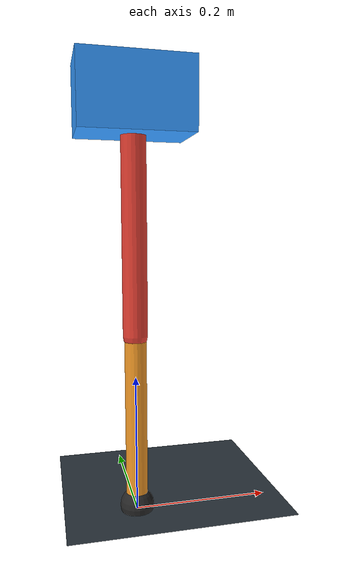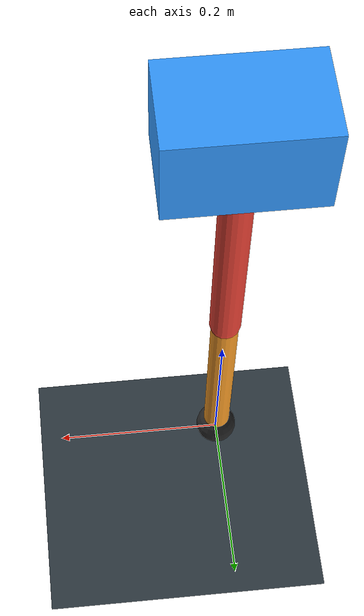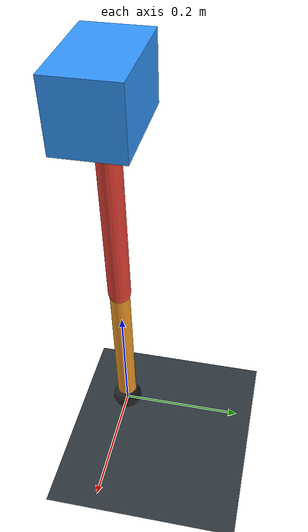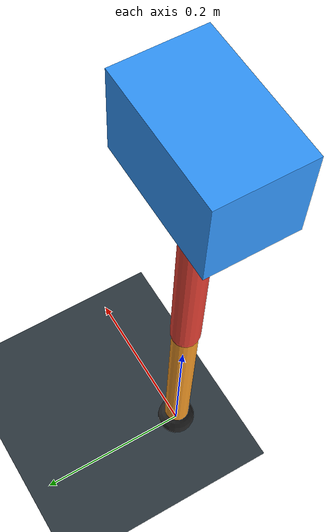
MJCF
<mujoco model="single_axis_two_bar">
  <compiler angle="radian" inertiafromgeom="true"/>
  <option timestep="0.001" integrator="implicitfast" gravity="0 0 -9.81"/>
  <default>
    <joint damping="0.08"/>
    <geom friction="1.2 0.01 0.0001" condim="3"/>
  </default>
  <worldbody>
    <geom name="floor" type="plane" size="5 5 0.1" rgba="0.18 0.22 0.25 1"/>
    <body name="carriage" pos="0 0 0.5930831761582167">
      <joint name="pole_slide" type="slide" axis="0 0 1"/>
      <geom name="payload" type="box" size="0.08 0.05 0.05" mass="2.64269430357209" rgba="0.2 0.6 1 1"/>
      <body name="thigh" pos="0 0 0">
        <joint name="hip" type="hinge" axis="0 1 0"/>
        <geom name="thigh_link" type="capsule" fromto="0 0 0 0 0 -0.33132582198409555" size="0.018" mass="0.23607402624813437" rgba="0.9 0.25 0.2 1"/>
        <body name="shank" pos="0 0 -0.33132582198409555">
          <joint name="knee" type="hinge" axis="0 1 0"/>
          <geom name="shank_link" type="capsule" fromto="0 0 0 0 0 -0.25432693694190095" size="0.016" mass="0.18121130320507287" rgba="0.95 0.6 0.15 1"/>
          <geom name="foot" type="sphere" pos="0 0 -0.25432693694190095" size="0.025" mass="0.03" rgba="0.15 0.15 0.15 1"/>
          <site name="toe" pos="0 0 -0.25432693694190095" size="0.008"/>
        </body>
      </body>
    </body>
  </worldbody>
  <actuator>
    <motor name="hip_motor" joint="hip" ctrlrange="-31.07301199931272 31.07301199931272"/>
    <motor name="knee_motor" joint="knee" ctrlrange="-107.27912099753159 107.27912099753159"/>
  </actuator>
</mujoco>
